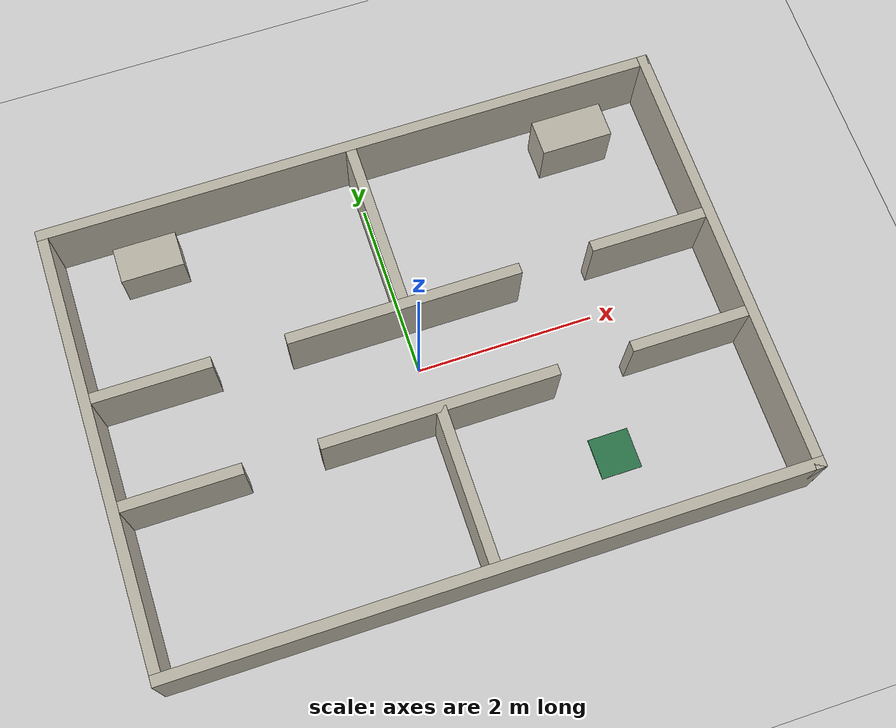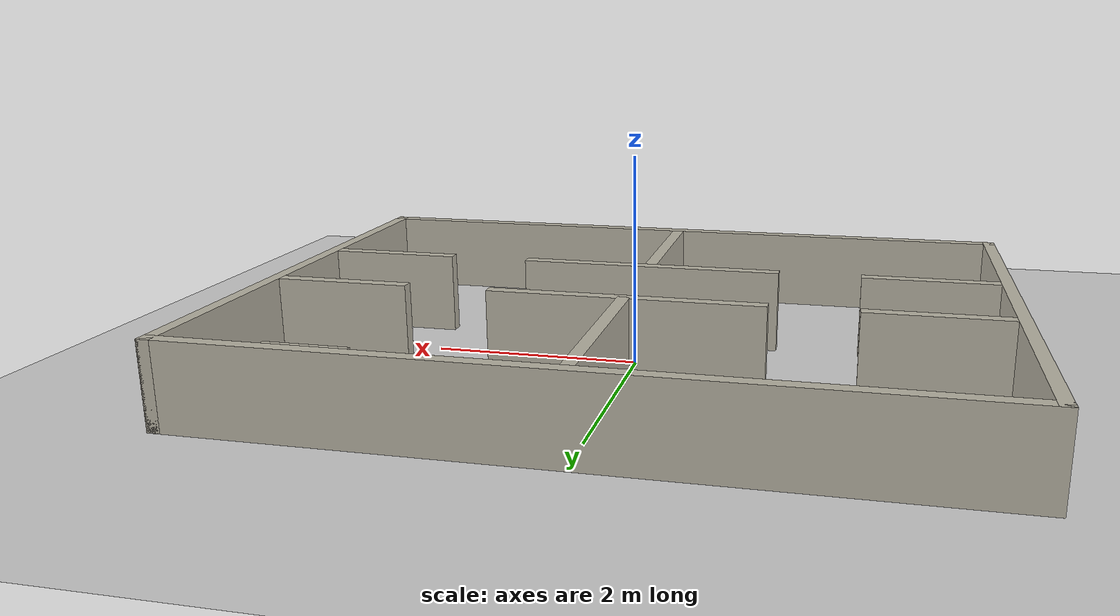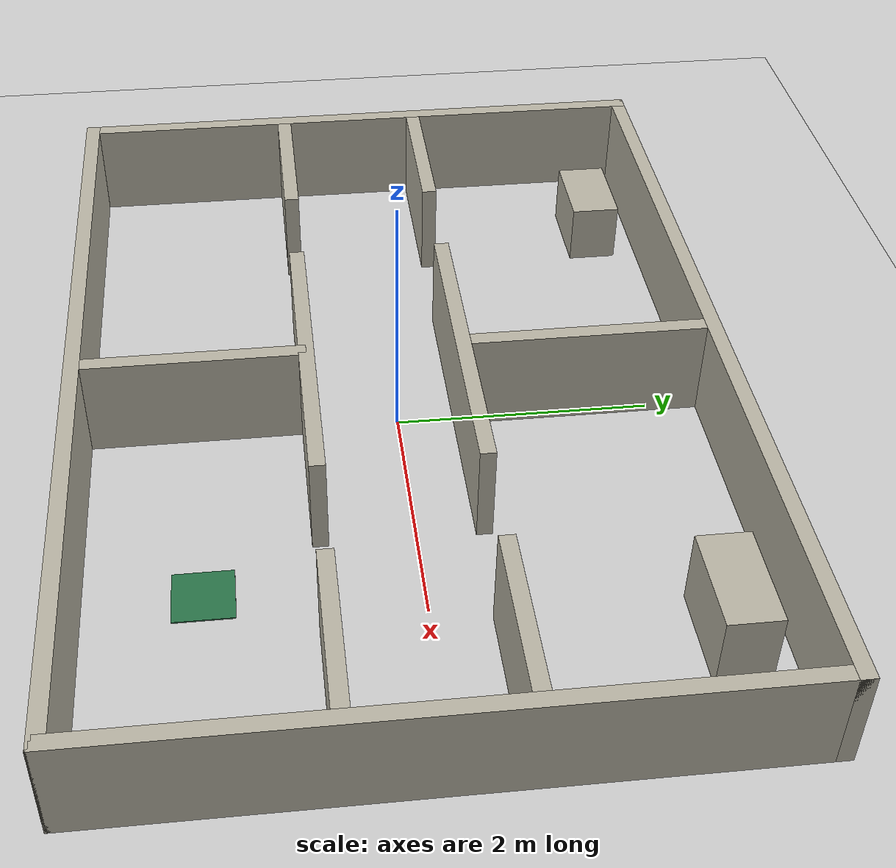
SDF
<?xml version="1.0" ?>
<sdf version="1.6">
  <world name="indoor_office">
    <include>
      <uri>model://ground_plane</uri>
    </include>
    <include>
      <uri>model://sun</uri>
    </include>
    <gravity>0 0 -9.8</gravity>
    <physics type="ode">
      <max_step_size>0.001</max_step_size>
      <real_time_factor>1.0</real_time_factor>
      <real_time_update_rate>1000</real_time_update_rate>
    </physics>
    <scene>
      <ambient>0.45 0.45 0.45 1</ambient>
      <background>0.70 0.78 0.85 1</background>
      <shadows>true</shadows>
    </scene>

    <model name="wall_south">
      <static>true</static>
      <pose>0.0000 -2.4600 0.4000 0 0 0</pose>
      <link name="link">
      <collision name="collision">
        <geometry>
          <box>
            <size>7.0400 0.1200 0.8000</size>
          </box>
        </geometry>
      </collision>
        <visual name="visual">
          <geometry>
            <box>
              <size>7.0400 0.1200 0.8000</size>
            </box>
          </geometry>
          <material>
            <ambient>0.72 0.70 0.64 1</ambient>
            <diffuse>0.72 0.70 0.64 1</diffuse>
          </material>
        </visual>
      </link>
    </model>
    <model name="wall_north">
      <static>true</static>
      <pose>0.0000 2.4600 0.4000 0 0 0</pose>
      <link name="link">
      <collision name="collision">
        <geometry>
          <box>
            <size>7.0400 0.1200 0.8000</size>
          </box>
        </geometry>
      </collision>
        <visual name="visual">
          <geometry>
            <box>
              <size>7.0400 0.1200 0.8000</size>
            </box>
          </geometry>
          <material>
            <ambient>0.72 0.70 0.64 1</ambient>
            <diffuse>0.72 0.70 0.64 1</diffuse>
          </material>
        </visual>
      </link>
    </model>
    <model name="wall_west">
      <static>true</static>
      <pose>-3.4600 0.0000 0.4000 0 0 0</pose>
      <link name="link">
      <collision name="collision">
        <geometry>
          <box>
            <size>0.1200 5.0400 0.8000</size>
          </box>
        </geometry>
      </collision>
        <visual name="visual">
          <geometry>
            <box>
              <size>0.1200 5.0400 0.8000</size>
            </box>
          </geometry>
          <material>
            <ambient>0.72 0.70 0.64 1</ambient>
            <diffuse>0.72 0.70 0.64 1</diffuse>
          </material>
        </visual>
      </link>
    </model>
    <model name="wall_east">
      <static>true</static>
      <pose>3.4600 0.0000 0.4000 0 0 0</pose>
      <link name="link">
      <collision name="collision">
        <geometry>
          <box>
            <size>0.1200 5.0400 0.8000</size>
          </box>
        </geometry>
      </collision>
        <visual name="visual">
          <geometry>
            <box>
              <size>0.1200 5.0400 0.8000</size>
            </box>
          </geometry>
          <material>
            <ambient>0.72 0.70 0.64 1</ambient>
            <diffuse>0.72 0.70 0.64 1</diffuse>
          </material>
        </visual>
      </link>
    </model>
    <model name="wall_hall_north_0">
      <static>true</static>
      <pose>-2.7500 0.5000 0.4000 0 0 0</pose>
      <link name="link">
      <collision name="collision">
        <geometry>
          <box>
            <size>1.3000 0.1200 0.8000</size>
          </box>
        </geometry>
      </collision>
        <visual name="visual">
          <geometry>
            <box>
              <size>1.3000 0.1200 0.8000</size>
            </box>
          </geometry>
          <material>
            <ambient>0.72 0.70 0.64 1</ambient>
            <diffuse>0.72 0.70 0.64 1</diffuse>
          </material>
        </visual>
      </link>
    </model>
    <model name="wall_hall_south_0">
      <static>true</static>
      <pose>-2.7500 -0.7000 0.4000 0 0 0</pose>
      <link name="link">
      <collision name="collision">
        <geometry>
          <box>
            <size>1.3000 0.1200 0.8000</size>
          </box>
        </geometry>
      </collision>
        <visual name="visual">
          <geometry>
            <box>
              <size>1.3000 0.1200 0.8000</size>
            </box>
          </geometry>
          <material>
            <ambient>0.72 0.70 0.64 1</ambient>
            <diffuse>0.72 0.70 0.64 1</diffuse>
          </material>
        </visual>
      </link>
    </model>
    <model name="wall_hall_north_1">
      <static>true</static>
      <pose>0.0000 0.5000 0.4000 0 0 0</pose>
      <link name="link">
      <collision name="collision">
        <geometry>
          <box>
            <size>2.6000 0.1200 0.8000</size>
          </box>
        </geometry>
      </collision>
        <visual name="visual">
          <geometry>
            <box>
              <size>2.6000 0.1200 0.8000</size>
            </box>
          </geometry>
          <material>
            <ambient>0.72 0.70 0.64 1</ambient>
            <diffuse>0.72 0.70 0.64 1</diffuse>
          </material>
        </visual>
      </link>
    </model>
    <model name="wall_hall_south_1">
      <static>true</static>
      <pose>0.0000 -0.7000 0.4000 0 0 0</pose>
      <link name="link">
      <collision name="collision">
        <geometry>
          <box>
            <size>2.6000 0.1200 0.8000</size>
          </box>
        </geometry>
      </collision>
        <visual name="visual">
          <geometry>
            <box>
              <size>2.6000 0.1200 0.8000</size>
            </box>
          </geometry>
          <material>
            <ambient>0.72 0.70 0.64 1</ambient>
            <diffuse>0.72 0.70 0.64 1</diffuse>
          </material>
        </visual>
      </link>
    </model>
    <model name="wall_hall_north_2">
      <static>true</static>
      <pose>2.7500 0.5000 0.4000 0 0 0</pose>
      <link name="link">
      <collision name="collision">
        <geometry>
          <box>
            <size>1.3000 0.1200 0.8000</size>
          </box>
        </geometry>
      </collision>
        <visual name="visual">
          <geometry>
            <box>
              <size>1.3000 0.1200 0.8000</size>
            </box>
          </geometry>
          <material>
            <ambient>0.72 0.70 0.64 1</ambient>
            <diffuse>0.72 0.70 0.64 1</diffuse>
          </material>
        </visual>
      </link>
    </model>
    <model name="wall_hall_south_2">
      <static>true</static>
      <pose>2.7500 -0.7000 0.4000 0 0 0</pose>
      <link name="link">
      <collision name="collision">
        <geometry>
          <box>
            <size>1.3000 0.1200 0.8000</size>
          </box>
        </geometry>
      </collision>
        <visual name="visual">
          <geometry>
            <box>
              <size>1.3000 0.1200 0.8000</size>
            </box>
          </geometry>
          <material>
            <ambient>0.72 0.70 0.64 1</ambient>
            <diffuse>0.72 0.70 0.64 1</diffuse>
          </material>
        </visual>
      </link>
    </model>
    <model name="wall_office_kitchen">
      <static>true</static>
      <pose>0.0000 1.4500 0.4000 0 0 0</pose>
      <link name="link">
      <collision name="collision">
        <geometry>
          <box>
            <size>0.1200 1.9000 0.8000</size>
          </box>
        </geometry>
      </collision>
        <visual name="visual">
          <geometry>
            <box>
              <size>0.1200 1.9000 0.8000</size>
            </box>
          </geometry>
          <material>
            <ambient>0.72 0.70 0.64 1</ambient>
            <diffuse>0.72 0.70 0.64 1</diffuse>
          </material>
        </visual>
      </link>
    </model>
    <model name="wall_lobby_dock">
      <static>true</static>
      <pose>0.0000 -1.5500 0.4000 0 0 0</pose>
      <link name="link">
      <collision name="collision">
        <geometry>
          <box>
            <size>0.1200 1.7000 0.8000</size>
          </box>
        </geometry>
      </collision>
        <visual name="visual">
          <geometry>
            <box>
              <size>0.1200 1.7000 0.8000</size>
            </box>
          </geometry>
          <material>
            <ambient>0.72 0.70 0.64 1</ambient>
            <diffuse>0.72 0.70 0.64 1</diffuse>
          </material>
        </visual>
      </link>
    </model>
    <model name="table_office">
      <static>true</static>
      <pose>-2.4500 2.0000 0.2500 0 0 0</pose>
      <link name="link">
      <collision name="collision">
        <geometry>
          <box>
            <size>0.7000 0.4000 0.5000</size>
          </box>
        </geometry>
      </collision>
        <visual name="visual">
          <geometry>
            <box>
              <size>0.7000 0.4000 0.5000</size>
            </box>
          </geometry>
          <material>
            <ambient>0.72 0.70 0.64 1</ambient>
            <diffuse>0.72 0.70 0.64 1</diffuse>
          </material>
        </visual>
      </link>
    </model>
    <model name="counter_kitchen">
      <static>true</static>
      <pose>2.4500 2.0000 0.3000 0 0 0</pose>
      <link name="link">
      <collision name="collision">
        <geometry>
          <box>
            <size>0.8000 0.4000 0.6000</size>
          </box>
        </geometry>
      </collision>
        <visual name="visual">
          <geometry>
            <box>
              <size>0.8000 0.4000 0.6000</size>
            </box>
          </geometry>
          <material>
            <ambient>0.72 0.70 0.64 1</ambient>
            <diffuse>0.72 0.70 0.64 1</diffuse>
          </material>
        </visual>
      </link>
    </model>
    <model name="dock_marker">
      <static>true</static>
      <pose>1.7000 -1.5500 0.0050 0 0 0</pose>
      <link name="link">
        <visual name="visual">
          <geometry>
            <box>
              <size>0.4500 0.4500 0.0100</size>
            </box>
          </geometry>
          <material>
            <ambient>0.16 0.45 0.28 1</ambient>
            <diffuse>0.16 0.45 0.28 1</diffuse>
          </material>
        </visual>
      </link>
    </model>
  </world>
</sdf>
